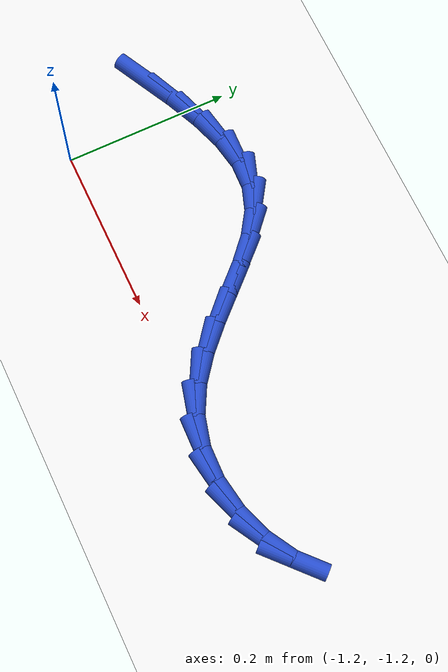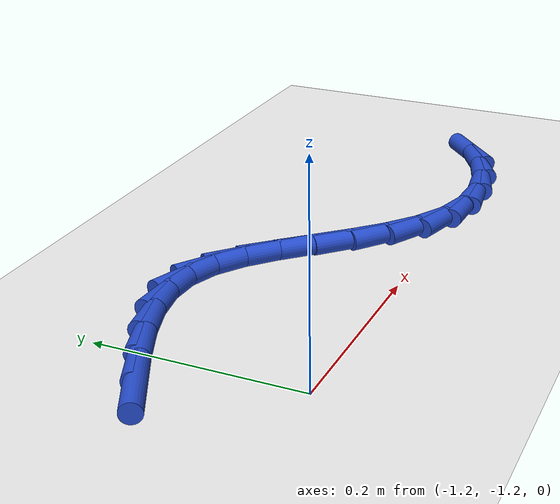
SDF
<sdf version="1.6">
 <world name="default">
  <model name="ground_plane">
   <static>1</static>
   <link name="link">
    <collision name="collision">
     <geometry><plane><normal>0 0 1</normal><size>100 100</size></plane></geometry>
     <surface><friction><ode><mu>100</mu><mu2>50</mu2></ode></friction></surface>
    </collision>
    <visual name="visual">
     <cast_shadows>0</cast_shadows>
     <geometry><plane><normal>0 0 1</normal><size>100 100</size></plane></geometry>
     <material>
      <script><uri>file://media/materials/scripts/gazebo.material</uri><name>Gazebo/WhiteGlow</name></script>
     </material>
    </visual>
   </link>
  </model>
  <model name="line">
   <link name="link_171">
    <pose>-1.2560652738475724 -1.076464154223204 0.01 0 1.57 0.47109059262949804</pose>
    <collision name="collision">
     <geometry><cylinder><radius>0.01</radius><length>0.08</length></cylinder></geometry>
    </collision>
    <visual name="visual">
     <material>
      <script><name>Gazebo/Blue</name><uri>file://media/materials/scripts/gazebo.material</uri></script>
     </material>
     <geometry><cylinder><radius>0.01</radius><length>0.08</length></cylinder></geometry>
    </visual>
   </link>
   <link name="link_172">
    <pose>-1.2175293670201845 -1.0568363272429864 0.01 0 1.57 0.41965639319129333</pose>
    <collision name="collision">
     <geometry><cylinder><radius>0.01</radius><length>0.08</length></cylinder></geometry>
    </collision>
    <visual name="visual">
     <material>
      <script><name>Gazebo/Blue</name><uri>file://media/materials/scripts/gazebo.material</uri></script>
     </material>
     <geometry><cylinder><radius>0.01</radius><length>0.08</length></cylinder></geometry>
    </visual>
   </link>
   <link name="link_173">
    <pose>-1.179739705415582 -1.0399760737504178 0.01 0 1.57 0.3283577121647972</pose>
    <collision name="collision">
     <geometry><cylinder><radius>0.01</radius><length>0.08</length></cylinder></geometry>
    </collision>
    <visual name="visual">
     <material>
      <script><name>Gazebo/Blue</name><uri>file://media/materials/scripts/gazebo.material</uri></script>
     </material>
     <geometry><cylinder><radius>0.01</radius><length>0.08</length></cylinder></geometry>
    </visual>
   </link>
   <link name="link_174">
    <pose>-1.1432294858141765 -1.027537373040605 0.01 0 1.57 0.18137402025375735</pose>
    <collision name="collision">
     <geometry><cylinder><radius>0.01</radius><length>0.08</length></cylinder></geometry>
    </collision>
    <visual name="visual">
     <material>
      <script><name>Gazebo/Blue</name><uri>file://media/materials/scripts/gazebo.material</uri></script>
     </material>
     <geometry><cylinder><radius>0.01</radius><length>0.08</length></cylinder></geometry>
    </visual>
   </link>
   <link name="link_175">
    <pose>-1.1085319049963767 -1.021174204408654 0.01 0 1.57 -0.04220888897706357</pose>
    <collision name="collision">
     <geometry><cylinder><radius>0.01</radius><length>0.08</length></cylinder></geometry>
    </collision>
    <visual name="visual">
     <material>
      <script><name>Gazebo/Blue</name><uri>file://media/materials/scripts/gazebo.material</uri></script>
     </material>
     <geometry><cylinder><radius>0.01</radius><length>0.08</length></cylinder></geometry>
    </visual>
   </link>
   <link name="link_176">
    <pose>-1.076180159742596 -1.0225405471496714 0.01 0 1.57 -0.3365786889622457</pose>
    <collision name="collision">
     <geometry><cylinder><radius>0.01</radius><length>0.08</length></cylinder></geometry>
    </collision>
    <visual name="visual">
     <material>
      <script><name>Gazebo/Blue</name><uri>file://media/materials/scripts/gazebo.material</uri></script>
     </material>
     <geometry><cylinder><radius>0.01</radius><length>0.08</length></cylinder></geometry>
    </visual>
   </link>
   <link name="link_177">
    <pose>-1.0465666709340125 -1.0329020728551637 0.01 0 1.57 -0.5842947809111328</pose>
    <collision name="collision">
     <geometry><cylinder><radius>0.01</radius><length>0.08</length></cylinder></geometry>
    </collision>
    <visual name="visual">
     <material>
      <script><name>Gazebo/Blue</name><uri>file://media/materials/scripts/gazebo.material</uri></script>
     </material>
     <geometry><cylinder><radius>0.01</radius><length>0.08</length></cylinder></geometry>
    </visual>
   </link>
   <link name="link_178">
    <pose>-1.019174805474628 -1.0510169737522421 0.01 0 1.57 -0.7367670961364607</pose>
    <collision name="collision">
     <geometry><cylinder><radius>0.01</radius><length>0.08</length></cylinder></geometry>
    </collision>
    <visual name="visual">
     <material>
      <script><name>Gazebo/Blue</name><uri>file://media/materials/scripts/gazebo.material</uri></script>
     </material>
     <geometry><cylinder><radius>0.01</radius><length>0.08</length></cylinder></geometry>
    </visual>
   </link>
   <link name="link_179">
    <pose>-0.9931267581905262 -1.0746472069102537 0.01 0 1.57 -0.8105803304289222</pose>
    <collision name="collision">
     <geometry><cylinder><radius>0.01</radius><length>0.08</length></cylinder></geometry>
    </collision>
    <visual name="visual">
     <material>
      <script><name>Gazebo/Blue</name><uri>file://media/materials/scripts/gazebo.material</uri></script>
     </material>
     <geometry><cylinder><radius>0.01</radius><length>0.08</length></cylinder></geometry>
    </visual>
   </link>
   <link name="link_180">
    <pose>-0.9675438063260107 -1.1015521983965963 0.01 0 1.57 -0.8213994642696155</pose>
    <collision name="collision">
     <geometry><cylinder><radius>0.01</radius><length>0.08</length></cylinder></geometry>
    </collision>
    <visual name="visual">
     <material>
      <script><name>Gazebo/Blue</name><uri>file://media/materials/scripts/gazebo.material</uri></script>
     </material>
     <geometry><cylinder><radius>0.01</radius><length>0.08</length></cylinder></geometry>
    </visual>
   </link>
   <link name="link_181">
    <pose>-0.9415472271253817 -1.1294913742786687 0.01 0 1.57 -0.7751037235653399</pose>
    <collision name="collision">
     <geometry><cylinder><radius>0.01</radius><length>0.08</length></cylinder></geometry>
    </collision>
    <visual name="visual">
     <material>
      <script><name>Gazebo/Blue</name><uri>file://media/materials/scripts/gazebo.material</uri></script>
     </material>
     <geometry><cylinder><radius>0.01</radius><length>0.08</length></cylinder></geometry>
    </visual>
   </link>
   <link name="link_182">
    <pose>-0.9142582978329417 -1.1562241606238703 0.01 0 1.57 -0.668873122345802</pose>
    <collision name="collision">
     <geometry><cylinder><radius>0.01</radius><length>0.08</length></cylinder></geometry>
    </collision>
    <visual name="visual">
     <material>
      <script><name>Gazebo/Blue</name><uri>file://media/materials/scripts/gazebo.material</uri></script>
     </material>
     <geometry><cylinder><radius>0.01</radius><length>0.08</length></cylinder></geometry>
    </visual>
   </link>
   <link name="link_183">
    <pose>-0.8847982956929916 -1.1795099834996 0.01 0 1.57 -0.4961566326264117</pose>
    <collision name="collision">
     <geometry><cylinder><radius>0.01</radius><length>0.08</length></cylinder></geometry>
    </collision>
    <visual name="visual">
     <material>
      <script><name>Gazebo/Blue</name><uri>file://media/materials/scripts/gazebo.material</uri></script>
     </material>
     <geometry><cylinder><radius>0.01</radius><length>0.08</length></cylinder></geometry>
    </visual>
   </link>
   <link name="link_184">
    <pose>-0.8522884979498325 -1.1971082689732557 0.01 0 1.57 -0.26205995918620084</pose>
    <collision name="collision">
     <geometry><cylinder><radius>0.01</radius><length>0.08</length></cylinder></geometry>
    </collision>
    <visual name="visual">
     <material>
      <script><name>Gazebo/Blue</name><uri>file://media/materials/scripts/gazebo.material</uri></script>
     </material>
     <geometry><cylinder><radius>0.01</radius><length>0.08</length></cylinder></geometry>
    </visual>
   </link>
   <link name="link_185">
    <pose>-0.8159376244770558 -1.2068586089298932 0.01 0 1.57 -0.03252234006843709</pose>
    <collision name="collision">
     <geometry><cylinder><radius>0.01</radius><length>0.08</length></cylinder></geometry>
    </collision>
    <visual name="visual">
     <material>
      <script><name>Gazebo/Blue</name><uri>file://media/materials/scripts/gazebo.material</uri></script>
     </material>
     <geometry><cylinder><radius>0.01</radius><length>0.08</length></cylinder></geometry>
    </visual>
   </link>
   <link name="link_186">
    <pose>-0.776630712462976 -1.2081374125859026 0.01 0 1.57 0.15997217173980022</pose>
    <collision name="collision">
     <geometry><cylinder><radius>0.01</radius><length>0.08</length></cylinder></geometry>
    </collision>
    <visual name="visual">
     <material>
      <script><name>Gazebo/Blue</name><uri>file://media/materials/scripts/gazebo.material</uri></script>
     </material>
     <geometry><cylinder><radius>0.01</radius><length>0.08</length></cylinder></geometry>
    </visual>
   </link>
   <link name="link_187">
    <pose>-0.7367618179079245 -1.2017045302539644 0.01 0 1.57 0.3376431545804268</pose>
    <collision name="collision">
     <geometry><cylinder><radius>0.01</radius><length>0.08</length></cylinder></geometry>
    </collision>
    <visual name="visual">
     <material>
      <script><name>Gazebo/Blue</name><uri>file://media/materials/scripts/gazebo.material</uri></script>
     </material>
     <geometry><cylinder><radius>0.01</radius><length>0.08</length></cylinder></geometry>
    </visual>
   </link>
   <link name="link_188">
    <pose>-0.6987788637499565 -1.1883691964789402 0.01 0 1.57 0.5236263916998437</pose>
    <collision name="collision">
     <geometry><cylinder><radius>0.01</radius><length>0.08</length></cylinder></geometry>
    </collision>
    <visual name="visual">
     <material>
      <script><name>Gazebo/Blue</name><uri>file://media/materials/scripts/gazebo.material</uri></script>
     </material>
     <geometry><cylinder><radius>0.01</radius><length>0.08</length></cylinder></geometry>
    </visual>
   </link>
   <link name="link_189">
    <pose>-0.6651297729271306 -1.1689406458056946 0.01 0 1.57 0.7436469784290708</pose>
    <collision name="collision">
     <geometry><cylinder><radius>0.01</radius><length>0.08</length></cylinder></geometry>
    </collision>
    <visual name="visual">
     <material>
      <script><name>Gazebo/Blue</name><uri>file://media/materials/scripts/gazebo.material</uri></script>
     </material>
     <geometry><cylinder><radius>0.01</radius><length>0.08</length></cylinder></geometry>
    </visual>
   </link>
  </model>
 </world>
</sdf>
